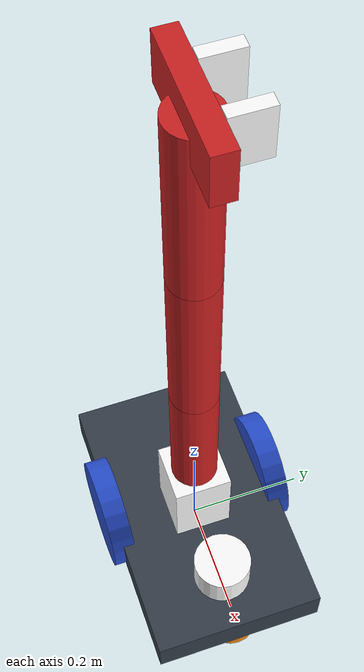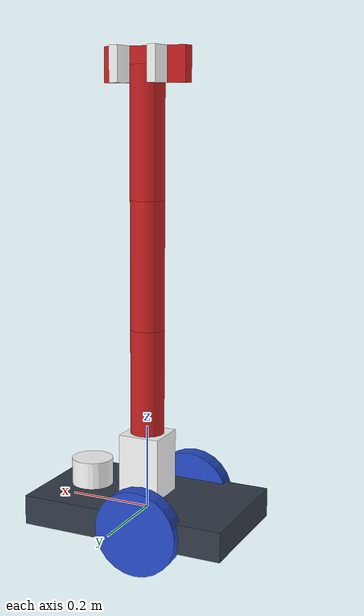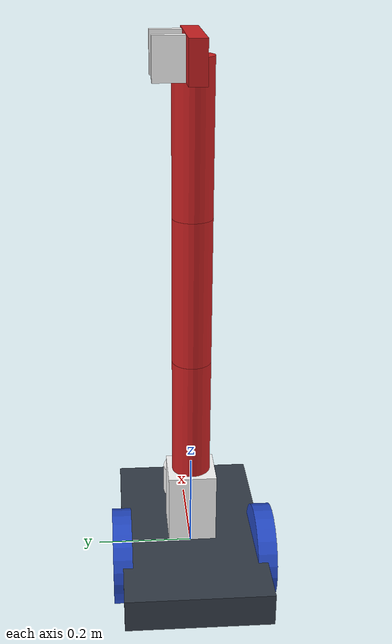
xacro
<?xml version="1.0" ?>
<robot name="detectiBot" xmlns:xacro="https://www.ros.org/wiki/xacro" >

<!-- |                                 detectiBot model                                | -->
<!-- |                             Experimental robotics lab                           | -->

<!-- ==================================== Xacro include ============================================ -->

 <xacro:include filename="$(find explab_2nd)/urdf/materials.xacro" />
 <xacro:include filename="$(find explab_2nd)/urdf/detectiBot.gazebo" />

<!-- ================================== Properties' list ============================================ -->
<!-- ======================== All units in m-kg-s-radians unit system =============================== -->

<!-- math and conversion  -->

  <xacro:property name="M_PI" value="3.1415926535897931" />
  <xacro:property name="M_PI_2" value="1.570796327" />
  <xacro:property name="DEG_TO_RAD" value="0.017453293" />

<!-- mass  -->

  <xacro:property name="arm_link_mass" value="0.025"/>
  <xacro:property name="base_link_mass" value="0.5"/>
  <xacro:property name="gripper_link_mass" value="0.2"/>

<!-- lenght -->

  <xacro:property name="arm_link_01_lenght" value="0.3"/>
  <xacro:property name="arm_link_02_lenght" value="0.3"/>
  <xacro:property name="arm_link_03_lenght" value="0.3"/>
  <xacro:property name="cluedo_link_lenght" value="0.3"/>

  <xacro:property name="err" value="-0.2"/>

<!-- ================================== Xacro definitions ========================================== -->

 <xacro:macro name="cylinder_inertia" params="mass r l">
    <inertia ixx="${mass*(3*r*r+l*l)/12}" ixy = "0" ixz = "0"
                iyy="${mass*(3*r*r+l*l)/12}" iyz = "0" izz="${mass*(r*r)/2}" />
 </xacro:macro>

    <xacro:macro name="link_wheel" params="name">
        <link name="${name}">
            <inertial>
              <mass value="0.2"/>
              <origin rpy="0 1.5707 1.5707" xyz="0 0 0"/>
              <inertia ixx="0.000526666666667" ixy="0" ixz="0" iyy="0.000526666666667" iyz="0" izz="0.001"/>
            </inertial>
            <collision name="link_right_wheel_collision">
              <origin rpy="0 1.5707 1.5707" xyz="0 0 0"/>
              <geometry>
                <cylinder length="0.04" radius="0.1"/>
              </geometry>
            </collision>
            <visual name="${name}_visual">
              <origin rpy="0 1.5707 1.5707" xyz="0 0 0"/>
              <geometry>
                <cylinder length="0.04" radius="0.1"/>
              </geometry>
            </visual>
        </link>
    </xacro:macro>

    <xacro:macro name="joint_wheel" params="name child origin_xyz">
      <joint name="${name}" type="continuous">
        <origin rpy="0 0 0" xyz="${origin_xyz}"/>
        <child link="${child}"/>
        <parent link="base_link"/>
        <axis rpy="0 0 0" xyz="0 1 0"/>
        <limit effort="10000" velocity="1000"/>
        <joint_properties damping="1.0" friction="1.0"/>
      </joint>
    </xacro:macro>

<!-- ======================================== Link  ================================================ -->

  <link name="base_link">
    <!-- pose and inertial -->
    <pose>0 0 0.1 0 0 0</pose>

    <inertial>
      <mass value="${base_link_mass}"/>
      <origin rpy="0 0 0" xyz="0 0 0.1"/>
      <inertia ixx="0.0395416666667" ixy="0" ixz="0" iyy="0.106208333333" iyz="0" izz="0.106208333333"/>
    </inertial>

    <!-- chassis collision -->
    <collision name="collision_chassis">
      <geometry>
        <box size="0.5 0.3 0.07"/>
      </geometry>
    </collision>

    <visual>
      <origin rpy="0 0 0" xyz="0 0 0"/>
      <geometry>
        <box size="0.5 0.3 0.07"/>
      </geometry>
      <material name="blue"/>
    </visual>

    <!-- caster front collision -->
    <collision name="caster_front_collision">
      <origin rpy=" 0 0 0" xyz="0.35 0 -0.05"/>
      <geometry>
        <sphere radius="0.05"/>
      </geometry>
      <surface>
        <friction>
          <ode>
            <mu>0</mu>
            <mu2>0</mu2>
            <slip1>1.0</slip1>
            <slip2>1.0</slip2>
          </ode>
        </friction>
      </surface>
    </collision>
    <visual name="caster_front_visual">
      <origin rpy=" 0 0 0" xyz="0.2 0 -0.05"/>
      <geometry>
        <sphere radius="0.05"/>
      </geometry>
    </visual>
  </link>

<!-- ==================================== Create wheels ============================================ -->

  <xacro:link_wheel name="link_right_wheel" />
  <xacro:link_wheel name="link_left_wheel" />
  <xacro:joint_wheel name="joint_right_wheel"  child="link_right_wheel"  origin_xyz="-0.05 0.15 0"  />
  <xacro:joint_wheel name="joint_left_wheel"   child="link_left_wheel"   origin_xyz="-0.05 -0.15 0"  />

<!-- ======================================== Link  ================================================ -->

   <link name="laser">
    <inertial>
      <origin xyz="0 0 0" rpy="0 0 0" />
      <mass value="1" />
      <xacro:cylinder_inertia mass="1" r="0.05" l="0.1" />
    </inertial>

    <visual>
      <origin xyz="0 0 0" rpy="0 0 0" />
      <geometry>
        <cylinder radius="0.05" length="0.1"/>
      </geometry>
      <material name="white" />
    </visual>

    <collision>
      <origin xyz="0 0 0" rpy="0 0 0"/>
      <geometry>
        <cylinder radius="0.05" length="0.1"/>
      </geometry>
    </collision>
  </link>

<!-- ======================================== Joint  =============================================== -->

  <joint name="joint_laser" type="fixed">
    <origin xyz="0.15 0 0.05" rpy="0 0 0"/>
    <parent link="base_link"/>
    <child link="laser"/>
  </joint>

<!-- ======================================== Link  ================================================ -->
<!-- ==================================== arm definition =========================================== -->

  <link name="arm_base_link">
  	<inertial>
  		<mass value="0.1"/>
  		<origin xyz="0 0 0" rpy="0 0 0" />
  		<inertia ixx="0.0000416666667" ixy="0" ixz="0" iyy="0.0000416666667" iyz="0" izz="0.0000416666667"/>
  	</inertial>

  	<collision>
  	  <origin xyz="0 0 0" rpy="0 0 0"/>
      <geometry>
        <box size="0.1 0.1 0.15"/>
      </geometry>
  	</collision>

  	<visual>
  	  <origin xyz="0 0 0" rpy="0 0 0"/>
      <geometry>
        <box size="0.1 0.1 0.2"/>
      </geometry>
      <material name="white" />
  	</visual>

  </link>

<!-- ======================================== Joint  =============================================== -->

  <joint name="arm_base_to_base" type="fixed">
  	<origin rpy="0 0 0" xyz="0 0 0.085"/>
  	<parent link="base_link"/>
  	<child link="arm_base_link"/>
  </joint>

<!-- ======================================== Link  ================================================ -->

  <link name="arm_link_01">
  	<inertial>
  		<mass value="${arm_link_mass}"/>
  		<origin xyz="0 0 ${arm_link_01_lenght/2}" rpy="0 0 0" />
  		<inertia ixx="0.000010279" ixy="0" ixz="0" iyy="0.000010279" iyz="0" izz="0.000007225"/>
  	</inertial>

  	<collision>
  	  <origin xyz="0 0 ${arm_link_01_lenght/2}" rpy="0 0 0"/>
      <geometry>
        <cylinder radius="0.04" length="${arm_link_01_lenght}"/>
      </geometry>
  	</collision>

  	<visual>
  	  <origin xyz="0 0 ${arm_link_01_lenght/2}" rpy="0 0 0"/>
      <geometry>
        <cylinder radius="0.04" length="${arm_link_01_lenght}"/>
      </geometry>
      <material name="red" />
  	</visual>

  </link>

<!-- ======================================== Joint  =============================================== -->

  <joint name="arm_joint_01" type="revolute">
  	<axis xyz="0 0 1"/>
  	<limit effort="1000.0" lower="-3.14" upper="3.14" velocity="0.2"/>
  	<origin rpy="0 0 0" xyz="0 0 ${arm_link_01_lenght/2 -0.1}"/>
  	<parent link="arm_base_link"/>
  	<child link="arm_link_01"/>
  </joint>

<!-- ======================================== Link  ================================================ -->

    <link name="arm_link_02">
  	<inertial>
  		<mass value="${arm_link_mass}"/>
  		<origin xyz="0 0 ${arm_link_02_lenght/2}" rpy="0 0 0" />
  		<inertia ixx="0.000010279" ixy="0" ixz="0" iyy="0.000010279" iyz="0" izz="0.000007225"/>
  	</inertial>

  	<collision>
  	  <origin xyz="0 0 ${arm_link_02_lenght/2}" rpy="0 0 0"/>
      <geometry>
        <cylinder radius="0.04" length="${arm_link_02_lenght}"/>
      </geometry>
  	</collision>

  	<visual>
  	  <origin xyz="0 0 ${arm_link_02_lenght/2}" rpy="0 0 0"/>
      <geometry>
        <cylinder radius="0.04" length="${arm_link_02_lenght}"/>
      </geometry>
      <material name="red" />
  	</visual>

  </link>

<!-- ======================================== Joint  =============================================== -->

  <joint name="arm_joint_02" type="revolute">
  	<axis xyz="1 0 0"/>
  	<limit effort="1000.0" lower="-1.8" upper="1.8" velocity="0.2"/>
  	<origin rpy="0 0 0" xyz="0 0 ${arm_link_02_lenght/2 + 0.15}"/>
  	<parent link="arm_link_01"/>
  	<child link="arm_link_02"/>
  </joint>

<!-- ======================================== Link  ================================================ -->

      <link name="arm_link_03">
  	<inertial>
  		<mass value="${arm_link_mass}"/>
  		<origin xyz="0 0 ${arm_link_03_lenght/2}" rpy="0 0 0" />
  		<inertia ixx="0.000010279" ixy="0" ixz="0" iyy="0.000010279" iyz="0" izz="0.000007225"/>
  	</inertial>

  	<collision>
  	  <origin xyz="0 0 ${arm_link_03_lenght/2}" rpy="0 0 0"/>
      <geometry>
        <cylinder radius="0.04" length="${arm_link_03_lenght}"/>
      </geometry>
  	</collision>

  	<visual>
  	  <origin xyz="0 0 ${arm_link_03_lenght/2}" rpy="0 0 0"/>
      <geometry>
        <cylinder radius="0.04" length="${arm_link_03_lenght}"/>
      </geometry>
      <material name="red" />
  	</visual>

  </link>

<!-- ======================================== Joint  =============================================== -->

  <joint name="arm_joint_03" type="revolute">
  	<axis xyz="1 0 0"/>
  	<limit effort="1000.0" lower="-1.8" upper="1.8" velocity="0.2"/>
  	<origin rpy="0 0 0" xyz="0 0 ${arm_link_03_lenght/2 + 0.15}"/>
  	<parent link="arm_link_02"/>
  	<child link="arm_link_03"/>
  </joint>

<!-- ======================================== Link  ================================================ -->

    <link name="cluedo_link">
  	<inertial>
  		<mass value="0.025"/>
  		<origin xyz="0 0 ${cluedo_link_lenght/2}" rpy="0 0 0" />
  		<inertia ixx="0.000010279" ixy="0" ixz="0" iyy="0.000010279" iyz="0" izz="0.000007225"/>
  	</inertial>

  	<collision>
  	  <origin xyz="0 0 ${cluedo_link_lenght/2}" rpy="0 0 1.57"/>
      <geometry>
        <box size="0.034 0.2 0.08"/>
      </geometry>
  	</collision>

  	<visual>
  	  <origin xyz="0 0 ${cluedo_link_lenght/2}" rpy="0 0 1.57"/>
      <geometry>
        <box size="0.034 0.2 0.08"/>
      </geometry>
      <material name="red" />
  	</visual>

  </link>

<!-- ======================================== Joint  =============================================== -->

  <joint name="arm_joint_04" type="revolute">
  	<axis xyz="1 0 0"/>
  	<limit effort="1000.0" lower="-1.8" upper="1.8" velocity="0.5"/>
  	<origin rpy="0 0 0" xyz="0 0 ${cluedo_link_lenght/2}"/>
  	<parent link="arm_link_03"/>
  	<child link="cluedo_link"/>
  </joint>

<!-- ======================================== Link  ================================================ -->

<link name="right_grip_link">
  	<inertial>
  		<mass value="0.01"/>
  		<origin xyz="0 0 0" rpy="0 0 0" />
  		<inertia ixx="0.000010279" ixy="0" ixz="0" iyy="0.000010279" iyz="0" izz="0.000007225"/>
  	</inertial>

  	<collision>
  	  <origin xyz="-0.032 0.048 0.0" rpy="0 3.1415 -1.57"/>
      <geometry>
        <box size="0.06 0.02 0.08"/>
      </geometry>
  	</collision>

  	<visual>
  	  <origin xyz="-0.032 0.048 0.0" rpy="0 3.1415 -1.57"/>
      <geometry>
        <box size="0.06 0.02 0.08"/>
      </geometry>
      <material name="white" />
  	</visual>

  </link>

<!-- ======================================== Joint  =============================================== -->

  <joint name="right_grip_joint" type="prismatic">
  	<axis xyz="1 0 0"/>
  	<limit effort="1000.0" lower="-0.04" upper="0.035" velocity="6.5"/>
  	<origin rpy="0 0 0" xyz="-0.015 0 0.15"/>
  	<parent link="cluedo_link"/>
  	<child link="right_grip_link"/>
  </joint>

<!-- ======================================== Link  ================================================ -->

  <link name="left_grip_link">
  	<inertial>
  		<mass value="0.01"/>
  		<origin xyz="0 0 0" rpy="0 0 0" />
  		<inertia ixx="0.000010279" ixy="0" ixz="0" iyy="0.000010279" iyz="0" izz="0.000007225"/>
  	</inertial>

  	<collision>
  	  <origin xyz="0.06 0.048 0.0" rpy="0 3.1415 -1.57"/>
      <geometry>
        <box size="0.06 0.02 0.08"/>
      </geometry>
  	</collision>

  	<visual>
  	  <origin xyz="0.06 0.048 0.0" rpy="0 3.1415 -1.57"/>
      <geometry>
        <box size="0.06 0.02 0.08"/>
      </geometry>
      <material name="white" />
  	</visual>
  </link>

<!-- ======================================== Joint  =============================================== -->

  <joint name="left_grip_joint" type="prismatic">
  	<axis xyz="1 0 0"/>
  	<limit effort="1000.0" upper="0.04" lower="-0.035" velocity="6.5"/>
  	<origin rpy="0 0 0" xyz="-0.015 0 0.15"/>
  	<parent link="cluedo_link"/>
  	<child link="left_grip_link"/>
  </joint>

<!-- ===================================== Transmission  ============================================ -->

<transmission name="arm_joint_01_trans">
	<type>transmission_interface/SimpleTransmission</type>
	<joint name="arm_joint_01">
		<hardwareInterface>hardware_interface/EffortJointInterface</hardwareInterface>
	</joint>
	<actuator name="motor1">
		<hardwareInterface>hardware_interface/EffortJointInterface</hardwareInterface>
		<mechanicalInterface>1</mechanicalInterface>
	</actuator>
</transmission>

<transmission name="arm_joint_02_trans">
	<type>transmission_interface/SimpleTransmission</type>
	<joint name="arm_joint_02">
		<hardwareInterface>hardware_interface/EffortJointInterface</hardwareInterface>
	</joint>
	<actuator name="motor2">
		<hardwareInterface>hardware_interface/EffortJointInterface</hardwareInterface>
		<mechanicalInterface>1</mechanicalInterface>
	</actuator>
</transmission>

<transmission name="arm_joint_03_trans">
	<type>transmission_interface/SimpleTransmission</type>
	<joint name="arm_joint_03">
		<hardwareInterface>hardware_interface/EffortJointInterface</hardwareInterface>
	</joint>
	<actuator name="motor3">
		<hardwareInterface>hardware_interface/EffortJointInterface</hardwareInterface>
		<mechanicalInterface>1</mechanicalInterface>
	</actuator>
</transmission>

<transmission name="arm_joint_04_trans">
	<type>transmission_interface/SimpleTransmission</type>
	<joint name="arm_joint_04">
		<hardwareInterface>hardware_interface/EffortJointInterface</hardwareInterface>
	</joint>
	<actuator name="motor4">
		<hardwareInterface>hardware_interface/EffortJointInterface</hardwareInterface>
		<mechanicalInterface>1</mechanicalInterface>
	</actuator>
</transmission>

<transmission name="left_grip_trans">
	<type>transmission_interface/SimpleTransmission</type>
	<joint name="left_grip_joint">
		<hardwareInterface>hardware_interface/EffortJointInterface</hardwareInterface>
	</joint>
	<actuator name="motor5">
		<hardwareInterface>hardware_interface/EffortJointInterface</hardwareInterface>
		<mechanicalInterface>1</mechanicalInterface>
	</actuator>
</transmission>

<transmission name="right_grip_trans">
	<type>transmission_interface/SimpleTransmission</type>
	<joint name="right_grip_joint">
		<hardwareInterface>hardware_interface/EffortJointInterface</hardwareInterface>
	</joint>
	<actuator name="motor6">
		<hardwareInterface>hardware_interface/EffortJointInterface</hardwareInterface>
		<mechanicalInterface>1</mechanicalInterface>
	</actuator>
</transmission>

</robot>

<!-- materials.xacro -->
<robot name="detectibot" xmlns:xacro="https://www.ros.org/wiki/xacro" >

  <material name="neongreen" >
    <color rgba="0.047058823529411764 1.0 0.047058823529411764 1.0" />
  </material>

  <material name="black">
    <color rgba="0.0 0.0 0.0 1.0"/>
  </material>

  <material name="acidgreen" >
    <color rgba="0.5607843137254902 0.996078431372549 0.03529411764705882 1.0" />
  </material>

  <material name="blue">
    <color rgba="0.203125 0.23828125 0.28515625 1.0"/>
  </material>

  <material name="green">
    <color rgba="0.0 0.8 0.0 1.0"/>
  </material>

  <material name="ocre" >
    <color rgba="0.7764705882352941 0.611764705882353 0.01568627450980392 1.0" />
  </material>

  <material name="grey">
    <color rgba="0.2 0.2 0.2 1.0"/>
  </material>

  <material name="bruise" >
    <color rgba="0.49411764705882355 0.25098039215686274 0.44313725490196076 1.0" />
  </material>

  <material name="orange">
    <color rgba="1.0 0.423529411765 0.0392156862745 1.0"/>
  </material>

  <material name="brown">
    <color rgba="0.870588235294 0.811764705882 0.764705882353 1.0"/>
  </material>

  <material name="burgundy" >
    <color rgba="0.3803921568627451 0.0 0.13725490196078433 1.0" />
  </material>

  <material name="dusk" >
    <color rgba="0.3058823529411765 0.32941176470588235 0.5058823529411764 1.0" />
  </material>

  <material name="red">
    <color rgba="0.80078125 0.12890625 0.1328125 1.0"/>
  </material>

  <material name="white">
    <color rgba="1.0 1.0 1.0 1.0"/>
  </material>

</robot>
